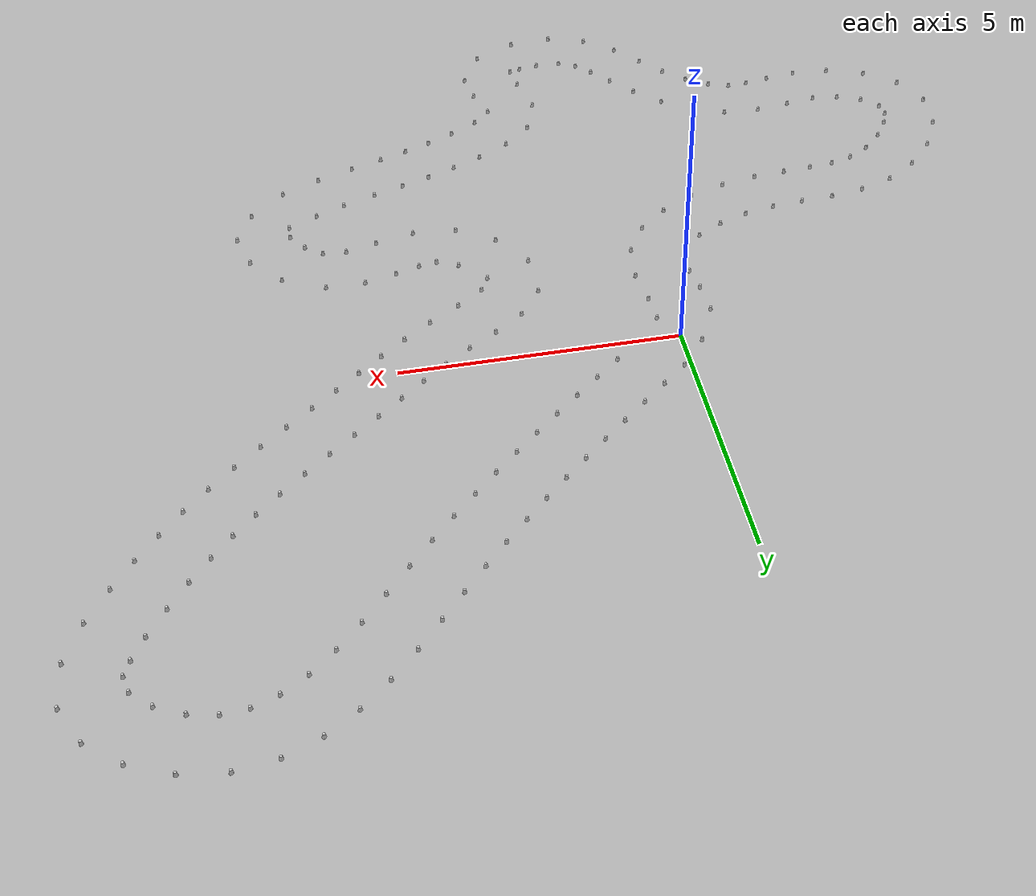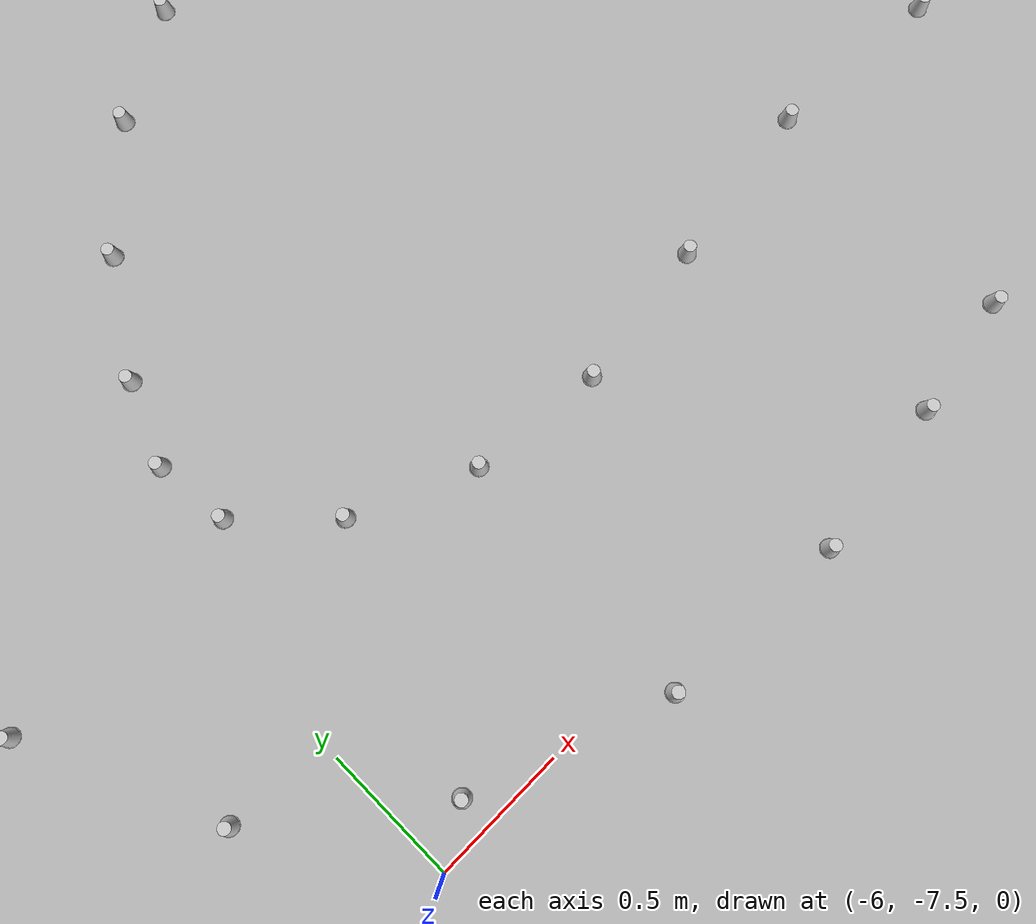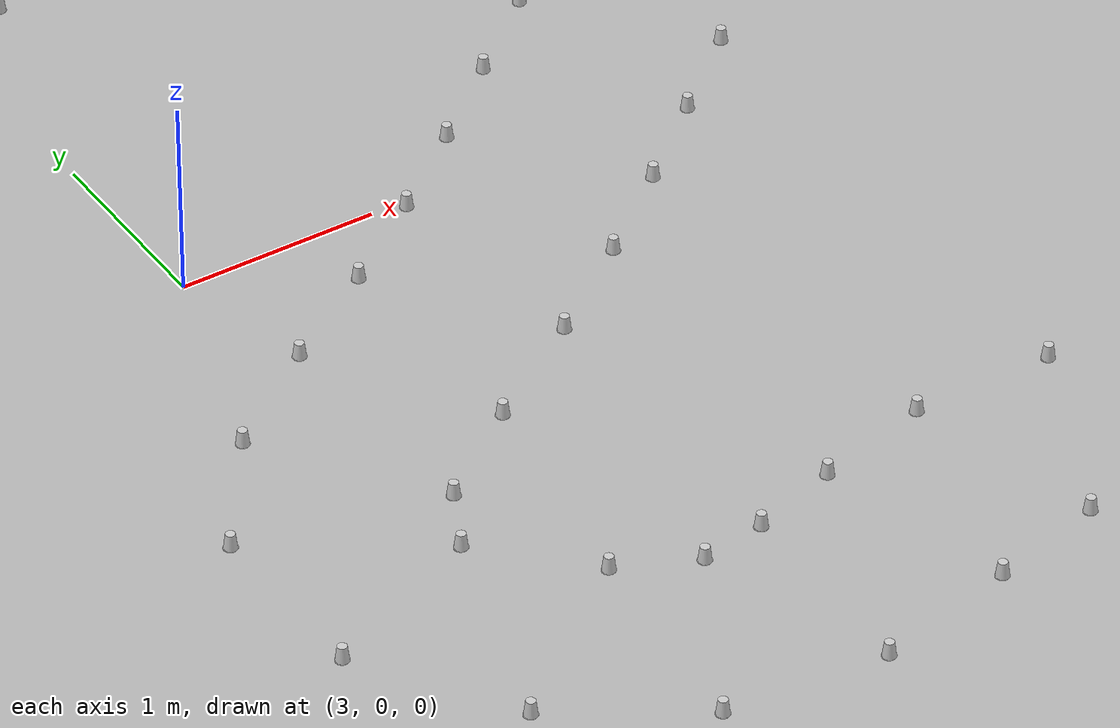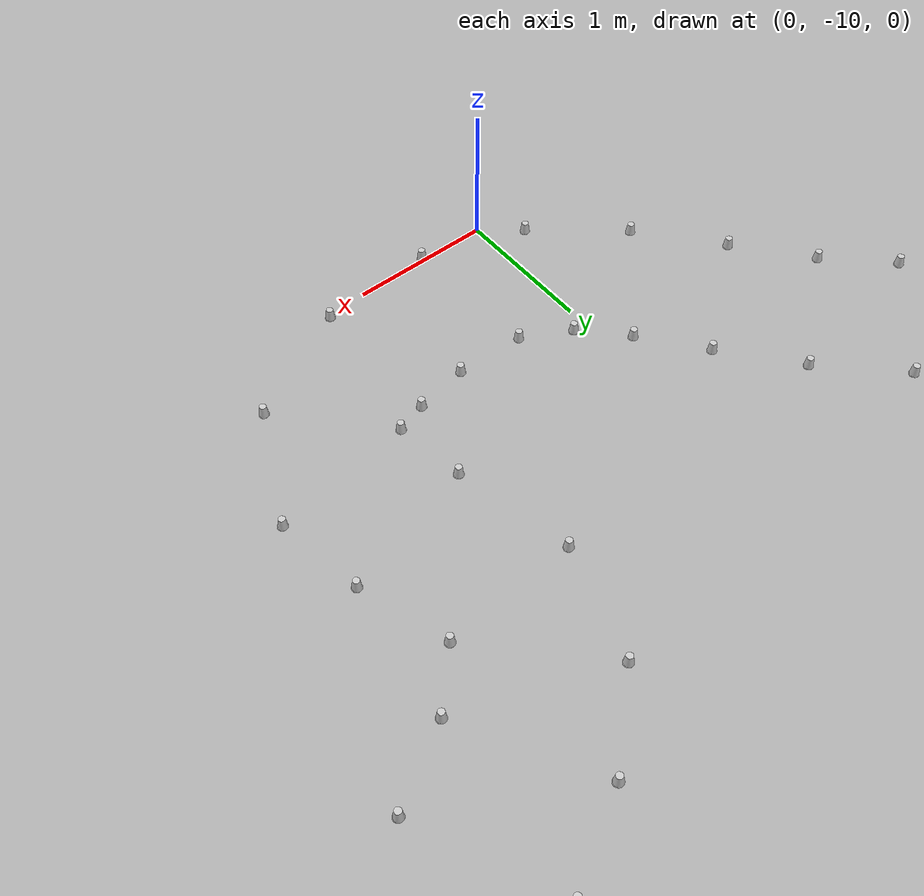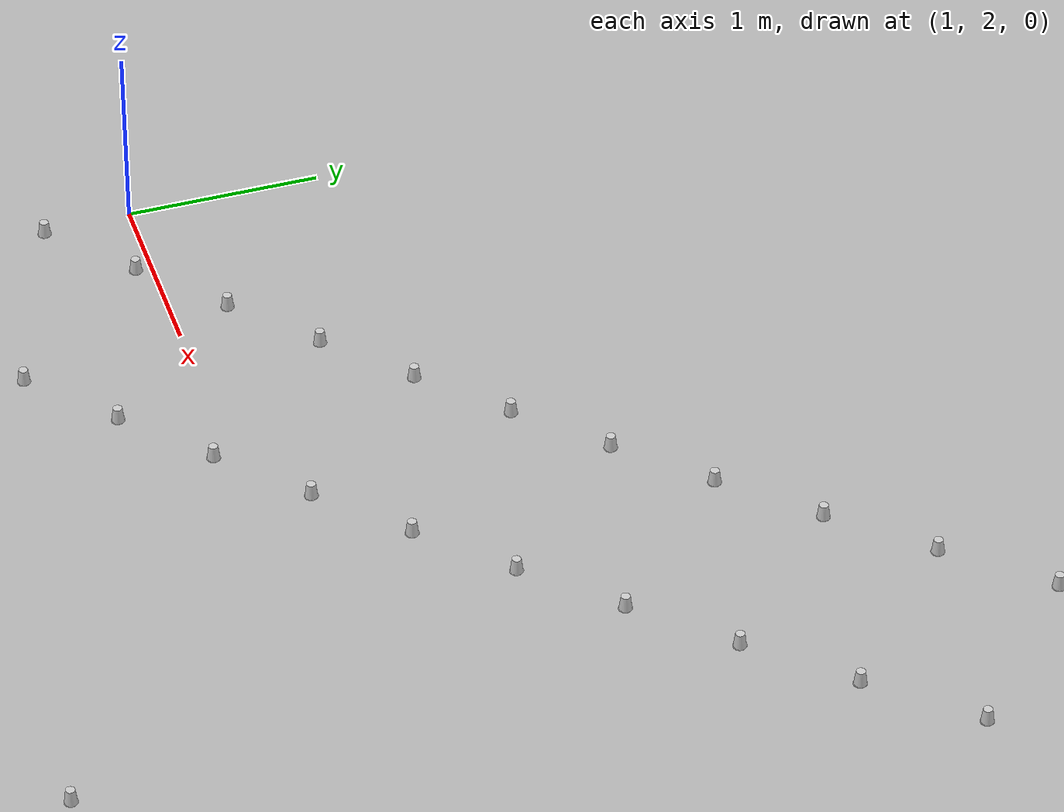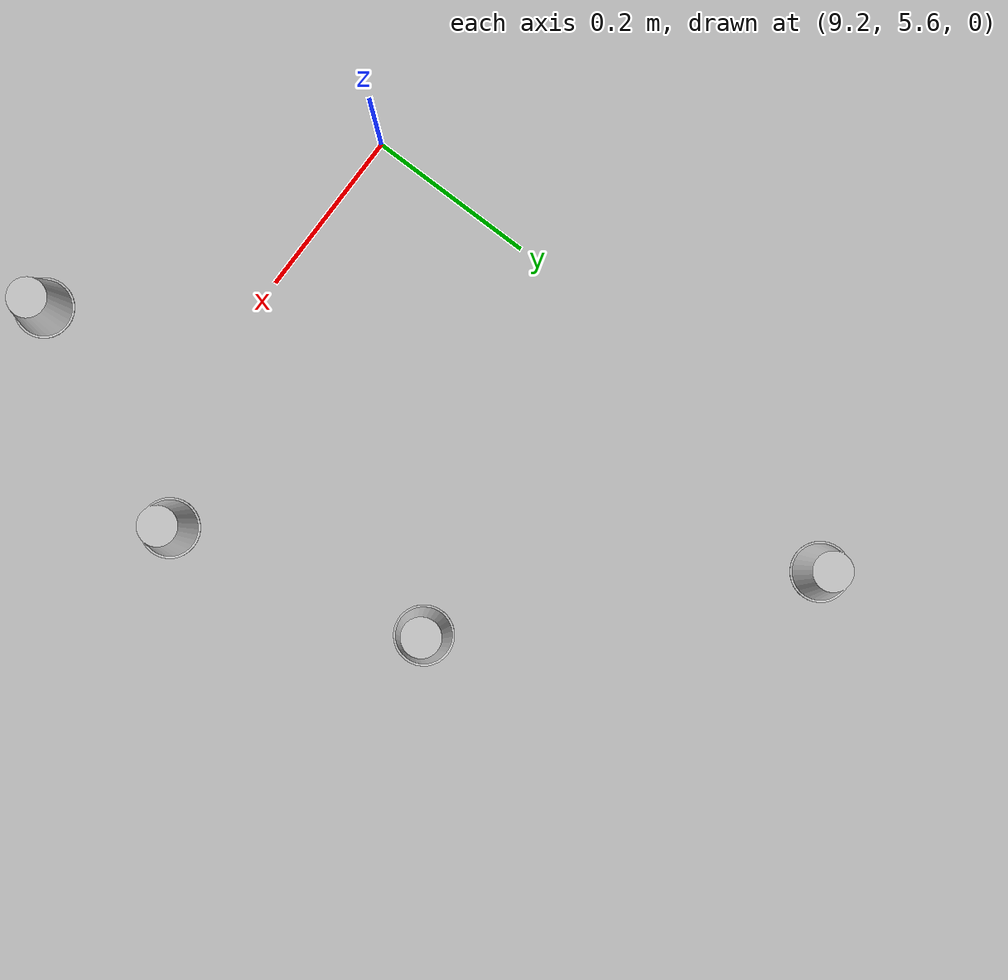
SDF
<?xml version='1.0' encoding='UTF-8'?>
<sdf version="1.4">
  <model name="some track">
    <include>
      <uri>model://cone_yellow</uri>
      <pose>0.7903068028861945 0.021845637287467967 0 0 0 0</pose>
      <name>cone_right_0</name>
    </include>
    <include>
      <uri>model://cone_yellow</uri>
      <pose>1.2393142175344516 0.41014836666673943 0 0 0 0</pose>
      <name>cone_right_1</name>
    </include>
    <include>
      <uri>model://cone_yellow</uri>
      <pose>1.6763016855677961 0.790349593238324 0 0 0 0</pose>
      <name>cone_right_2</name>
    </include>
    <include>
      <uri>model://cone_yellow</uri>
      <pose>2.1032036446618774 1.1658504882365066 0 0 0 0</pose>
      <name>cone_right_3</name>
    </include>
    <include>
      <uri>model://cone_yellow</uri>
      <pose>2.5219173402246353 1.5400322226631515 0 0 0 0</pose>
      <name>cone_right_4</name>
    </include>
    <include>
      <uri>model://cone_yellow</uri>
      <pose>2.934298205927498 1.916251039455393 0 0 0 0</pose>
      <name>cone_right_5</name>
    </include>
    <include>
      <uri>model://cone_yellow</uri>
      <pose>3.3421593083753023 2.2978344098972396 0 0 0 0</pose>
      <name>cone_right_6</name>
    </include>
    <include>
      <uri>model://cone_yellow</uri>
      <pose>3.7472754867399467 2.6880790931509924 0 0 0 0</pose>
      <name>cone_right_7</name>
    </include>
    <include>
      <uri>model://cone_yellow</uri>
      <pose>4.151391955042832 3.0902518188305583 0 0 0 0</pose>
      <name>cone_right_8</name>
    </include>
    <include>
      <uri>model://cone_yellow</uri>
      <pose>4.55623621049145 3.5075929665534473 0 0 0 0</pose>
      <name>cone_right_9</name>
    </include>
    <include>
      <uri>model://cone_yellow</uri>
      <pose>4.963531392867045 3.943323067845106 0 0 0 0</pose>
      <name>cone_right_10</name>
    </include>
    <include>
      <uri>model://cone_yellow</uri>
      <pose>5.375009003325162 4.4006513580652955 0 0 0 0</pose>
      <name>cone_right_11</name>
    </include>
    <include>
      <uri>model://cone_yellow</uri>
      <pose>5.791950422367844 4.880261060611731 0 0 0 0</pose>
      <name>cone_right_12</name>
    </include>
    <include>
      <uri>model://cone_yellow</uri>
      <pose>6.211567297760634 5.356157008735423 0 0 0 0</pose>
      <name>cone_right_13</name>
    </include>
    <include>
      <uri>model://cone_yellow</uri>
      <pose>6.634821010686621 5.794136557599716 0 0 0 0</pose>
      <name>cone_right_14</name>
    </include>
    <include>
      <uri>model://cone_yellow</uri>
      <pose>7.063907017033415 6.164732100872904 0 0 0 0</pose>
      <name>cone_right_15</name>
    </include>
    <include>
      <uri>model://cone_yellow</uri>
      <pose>7.497042533063882 6.439977203475497 0 0 0 0</pose>
      <name>cone_right_16</name>
    </include>
    <include>
      <uri>model://cone_yellow</uri>
      <pose>7.929938955991031 6.598063140316374 0 0 0 0</pose>
      <name>cone_right_17</name>
    </include>
    <include>
      <uri>model://cone_yellow</uri>
      <pose>8.36558845999559 6.628531744224526 0 0 0 0</pose>
      <name>cone_right_18</name>
    </include>
    <include>
      <uri>model://cone_yellow</uri>
      <pose>8.827423779855046 6.525471670814983 0 0 0 0</pose>
      <name>cone_right_19</name>
    </include>
    <include>
      <uri>model://cone_yellow</uri>
      <pose>9.288146140578542 6.295149485439371 0 0 0 0</pose>
      <name>cone_right_20</name>
    </include>
    <include>
      <uri>model://cone_yellow</uri>
      <pose>9.618585660560317 5.978969313016247 0 0 0 0</pose>
      <name>cone_right_21</name>
    </include>
    <include>
      <uri>model://cone_yellow</uri>
      <pose>9.696202968300673 5.674376011767347 0 0 0 0</pose>
      <name>cone_right_22</name>
    </include>
    <include>
      <uri>model://cone_yellow</uri>
      <pose>9.583354017250965 5.406372757519657 0 0 0 0</pose>
      <name>cone_right_23</name>
    </include>
    <include>
      <uri>model://cone_yellow</uri>
      <pose>9.359152386966194 5.001992204541675 0 0 0 0</pose>
      <name>cone_right_24</name>
    </include>
    <include>
      <uri>model://cone_yellow</uri>
      <pose>9.038722156686179 4.5292066678711045 0 0 0 0</pose>
      <name>cone_right_25</name>
    </include>
    <include>
      <uri>model://cone_yellow</uri>
      <pose>8.694596810375735 4.066040747746386 0 0 0 0</pose>
      <name>cone_right_26</name>
    </include>
    <include>
      <uri>model://cone_yellow</uri>
      <pose>8.347499909304366 3.640565776709532 0 0 0 0</pose>
      <name>cone_right_27</name>
    </include>
    <include>
      <uri>model://cone_yellow</uri>
      <pose>7.99011312695322 3.2441949734354756 0 0 0 0</pose>
      <name>cone_right_28</name>
    </include>
    <include>
      <uri>model://cone_yellow</uri>
      <pose>7.6114815983863116 2.863463875998927 0 0 0 0</pose>
      <name>cone_right_29</name>
    </include>
    <include>
      <uri>model://cone_yellow</uri>
      <pose>7.206487154027621 2.488671508979278 0 0 0 0</pose>
      <name>cone_right_30</name>
    </include>
    <include>
      <uri>model://cone_yellow</uri>
      <pose>6.78038456121811 2.1173921707558945 0 0 0 0</pose>
      <name>cone_right_31</name>
    </include>
    <include>
      <uri>model://cone_yellow</uri>
      <pose>6.341096025165415 1.749432633605972 0 0 0 0</pose>
      <name>cone_right_32</name>
    </include>
    <include>
      <uri>model://cone_yellow</uri>
      <pose>5.8966208136135245 1.3843888721379434 0 0 0 0</pose>
      <name>cone_right_33</name>
    </include>
    <include>
      <uri>model://cone_yellow</uri>
      <pose>5.454861865014956 1.0215609466394702 0 0 0 0</pose>
      <name>cone_right_34</name>
    </include>
    <include>
      <uri>model://cone_yellow</uri>
      <pose>5.022863065915921 0.6604521462381756 0 0 0 0</pose>
      <name>cone_right_35</name>
    </include>
    <include>
      <uri>model://cone_yellow</uri>
      <pose>4.598035037080028 0.30631397906991376 0 0 0 0</pose>
      <name>cone_right_36</name>
    </include>
    <include>
      <uri>model://cone_yellow</uri>
      <pose>4.164392718214367 -0.03752888189072123 0 0 0 0</pose>
      <name>cone_right_37</name>
    </include>
    <include>
      <uri>model://cone_yellow</uri>
      <pose>3.69994235231943 -0.37333894221495745 0 0 0 0</pose>
      <name>cone_right_38</name>
    </include>
    <include>
      <uri>model://cone_yellow</uri>
      <pose>3.183885718914305 -0.7069644815298772 0 0 0 0</pose>
      <name>cone_right_39</name>
    </include>
    <include>
      <uri>model://cone_yellow</uri>
      <pose>2.653612750068761 -1.096465154755807 0 0 0 0</pose>
      <name>cone_right_40</name>
    </include>
    <include>
      <uri>model://cone_yellow</uri>
      <pose>2.245492559671656 -1.675796326845552 0 0 0 0</pose>
      <name>cone_right_41</name>
    </include>
    <include>
      <uri>model://cone_yellow</uri>
      <pose>2.267425148436005 -2.5673306793850386 0 0 0 0</pose>
      <name>cone_right_42</name>
    </include>
    <include>
      <uri>model://cone_yellow</uri>
      <pose>2.755124972575575 -3.2947017897885527 0 0 0 0</pose>
      <name>cone_right_43</name>
    </include>
    <include>
      <uri>model://cone_yellow</uri>
      <pose>3.443046695931271 -3.726543353017429 0 0 0 0</pose>
      <name>cone_right_44</name>
    </include>
    <include>
      <uri>model://cone_yellow</uri>
      <pose>4.247131494876844 -3.799701138414675 0 0 0 0</pose>
      <name>cone_right_45</name>
    </include>
    <include>
      <uri>model://cone_yellow</uri>
      <pose>4.958949574950246 -3.6318605045346435 0 0 0 0</pose>
      <name>cone_right_46</name>
    </include>
    <include>
      <uri>model://cone_yellow</uri>
      <pose>5.5338731596338615 -3.4847873599469983 0 0 0 0</pose>
      <name>cone_right_47</name>
    </include>
    <include>
      <uri>model://cone_yellow</uri>
      <pose>5.964303062751814 -3.520170807462865 0 0 0 0</pose>
      <name>cone_right_48</name>
    </include>
    <include>
      <uri>model://cone_yellow</uri>
      <pose>6.274140390867912 -3.760500875887212 0 0 0 0</pose>
      <name>cone_right_49</name>
    </include>
    <include>
      <uri>model://cone_yellow</uri>
      <pose>6.517208005599094 -4.124235182253893 0 0 0 0</pose>
      <name>cone_right_50</name>
    </include>
    <include>
      <uri>model://cone_yellow</uri>
      <pose>6.5124685102356645 -4.41125231861134 0 0 0 0</pose>
      <name>cone_right_51</name>
    </include>
    <include>
      <uri>model://cone_yellow</uri>
      <pose>5.975671464338728 -4.678632288844485 0 0 0 0</pose>
      <name>cone_right_52</name>
    </include>
    <include>
      <uri>model://cone_yellow</uri>
      <pose>5.431032569261925 -4.913716970946239 0 0 0 0</pose>
      <name>cone_right_53</name>
    </include>
    <include>
      <uri>model://cone_yellow</uri>
      <pose>4.819510633957185 -5.130330048542375 0 0 0 0</pose>
      <name>cone_right_54</name>
    </include>
    <include>
      <uri>model://cone_yellow</uri>
      <pose>4.245659117031338 -5.324700737613043 0 0 0 0</pose>
      <name>cone_right_55</name>
    </include>
    <include>
      <uri>model://cone_yellow</uri>
      <pose>3.712638775819019 -5.514268204251535 0 0 0 0</pose>
      <name>cone_right_56</name>
    </include>
    <include>
      <uri>model://cone_yellow</uri>
      <pose>3.1853352246381905 -5.725284460348147 0 0 0 0</pose>
      <name>cone_right_57</name>
    </include>
    <include>
      <uri>model://cone_yellow</uri>
      <pose>2.6294619879497536 -5.984217908112782 0 0 0 0</pose>
      <name>cone_right_58</name>
    </include>
    <include>
      <uri>model://cone_yellow</uri>
      <pose>2.0385527056730792 -6.320874155221388 0 0 0 0</pose>
      <name>cone_right_59</name>
    </include>
    <include>
      <uri>model://cone_yellow</uri>
      <pose>1.516438068830003 -6.803613543591254 0 0 0 0</pose>
      <name>cone_right_60</name>
    </include>
    <include>
      <uri>model://cone_yellow</uri>
      <pose>1.2696440993872349 -7.584062375294875 0 0 0 0</pose>
      <name>cone_right_61</name>
    </include>
    <include>
      <uri>model://cone_yellow</uri>
      <pose>1.440828918849158 -8.406504001395536 0 0 0 0</pose>
      <name>cone_right_62</name>
    </include>
    <include>
      <uri>model://cone_yellow</uri>
      <pose>1.5072645714534936 -8.903341293575112 0 0 0 0</pose>
      <name>cone_right_63</name>
    </include>
    <include>
      <uri>model://cone_yellow</uri>
      <pose>1.2918785896015625 -8.969830360301904 0 0 0 0</pose>
      <name>cone_right_64</name>
    </include>
    <include>
      <uri>model://cone_yellow</uri>
      <pose>0.917859451704611 -9.038833853958828 0 0 0 0</pose>
      <name>cone_right_65</name>
    </include>
    <include>
      <uri>model://cone_yellow</uri>
      <pose>0.43541461445817964 -9.026507570217534 0 0 0 0</pose>
      <name>cone_right_66</name>
    </include>
    <include>
      <uri>model://cone_yellow</uri>
      <pose>0.10486505318580791 -8.85223344857643 0 0 0 0</pose>
      <name>cone_right_67</name>
    </include>
    <include>
      <uri>model://cone_yellow</uri>
      <pose>-0.16682370499794502 -8.565292616028826 0 0 0 0</pose>
      <name>cone_right_68</name>
    </include>
    <include>
      <uri>model://cone_yellow</uri>
      <pose>-0.4884970748785588 -8.152291736035034 0 0 0 0</pose>
      <name>cone_right_69</name>
    </include>
    <include>
      <uri>model://cone_yellow</uri>
      <pose>-0.8858069242208952 -7.664178339694872 0 0 0 0</pose>
      <name>cone_right_70</name>
    </include>
    <include>
      <uri>model://cone_yellow</uri>
      <pose>-1.370313849947691 -7.18980518667086 0 0 0 0</pose>
      <name>cone_right_71</name>
    </include>
    <include>
      <uri>model://cone_yellow</uri>
      <pose>-1.9242894870972567 -6.804077834394224 0 0 0 0</pose>
      <name>cone_right_72</name>
    </include>
    <include>
      <uri>model://cone_yellow</uri>
      <pose>-2.5545239511223055 -6.559865905474404 0 0 0 0</pose>
      <name>cone_right_73</name>
    </include>
    <include>
      <uri>model://cone_yellow</uri>
      <pose>-3.2536101831016193 -6.517594083888916 0 0 0 0</pose>
      <name>cone_right_74</name>
    </include>
    <include>
      <uri>model://cone_yellow</uri>
      <pose>-3.907958668420437 -6.615285112359366 0 0 0 0</pose>
      <name>cone_right_75</name>
    </include>
    <include>
      <uri>model://cone_yellow</uri>
      <pose>-4.48175379768516 -6.692147767323972 0 0 0 0</pose>
      <name>cone_right_76</name>
    </include>
    <include>
      <uri>model://cone_yellow</uri>
      <pose>-4.990109666759727 -6.640624832868604 0 0 0 0</pose>
      <name>cone_right_77</name>
    </include>
    <include>
      <uri>model://cone_yellow</uri>
      <pose>-5.437808812101916 -6.444510229546942 0 0 0 0</pose>
      <name>cone_right_78</name>
    </include>
    <include>
      <uri>model://cone_yellow</uri>
      <pose>-5.734965031445247 -6.150928328220027 0 0 0 0</pose>
      <name>cone_right_79</name>
    </include>
    <include>
      <uri>model://cone_yellow</uri>
      <pose>-5.765130568764182 -5.864434444837292 0 0 0 0</pose>
      <name>cone_right_80</name>
    </include>
    <include>
      <uri>model://cone_yellow</uri>
      <pose>-5.636826331853042 -5.561190690854722 0 0 0 0</pose>
      <name>cone_right_81</name>
    </include>
    <include>
      <uri>model://cone_yellow</uri>
      <pose>-5.375447125225274 -5.1600044761824755 0 0 0 0</pose>
      <name>cone_right_82</name>
    </include>
    <include>
      <uri>model://cone_yellow</uri>
      <pose>-4.997415627017048 -4.783714653701788 0 0 0 0</pose>
      <name>cone_right_83</name>
    </include>
    <include>
      <uri>model://cone_yellow</uri>
      <pose>-4.586449513634424 -4.540549264499129 0 0 0 0</pose>
      <name>cone_right_84</name>
    </include>
    <include>
      <uri>model://cone_yellow</uri>
      <pose>-4.170008489982322 -4.421524354460152 0 0 0 0</pose>
      <name>cone_right_85</name>
    </include>
    <include>
      <uri>model://cone_yellow</uri>
      <pose>-3.700688769628779 -4.362873247121042 0 0 0 0</pose>
      <name>cone_right_86</name>
    </include>
    <include>
      <uri>model://cone_yellow</uri>
      <pose>-3.157452632057519 -4.327138287686611 0 0 0 0</pose>
      <name>cone_right_87</name>
    </include>
    <include>
      <uri>model://cone_yellow</uri>
      <pose>-2.540506699960826 -4.270180051481141 0 0 0 0</pose>
      <name>cone_right_88</name>
    </include>
    <include>
      <uri>model://cone_yellow</uri>
      <pose>-1.8593755272253094 -4.136870917593568 0 0 0 0</pose>
      <name>cone_right_89</name>
    </include>
    <include>
      <uri>model://cone_yellow</uri>
      <pose>-1.1713619968457316 -3.901237245424263 0 0 0 0</pose>
      <name>cone_right_90</name>
    </include>
    <include>
      <uri>model://cone_yellow</uri>
      <pose>-0.5404674146434422 -3.5616619374472136 0 0 0 0</pose>
      <name>cone_right_91</name>
    </include>
    <include>
      <uri>model://cone_yellow</uri>
      <pose>-0.015478964129059691 -3.104167939558691 0 0 0 0</pose>
      <name>cone_right_92</name>
    </include>
    <include>
      <uri>model://cone_yellow</uri>
      <pose>0.33906094090178807 -2.495975149683355 0 0 0 0</pose>
      <name>cone_right_93</name>
    </include>
    <include>
      <uri>model://cone_yellow</uri>
      <pose>0.4261163203386632 -1.74723478407271 0 0 0 0</pose>
      <name>cone_right_94</name>
    </include>
    <include>
      <uri>model://cone_yellow</uri>
      <pose>0.34218106621249855 -1.0665513935467335 0 0 0 0</pose>
      <name>cone_right_95</name>
    </include>
    <include>
      <uri>model://cone_yellow</uri>
      <pose>0.3168279000328681 -0.5228219522142816 0 0 0 0</pose>
      <name>cone_right_96</name>
    </include>
    <include>
      <uri>model://cone_blue</uri>
      <pose>0.13672023707351344 0.7786974067834413 0 0 0 0</pose>
      <name>cone_left_0</name>
    </include>
    <include>
      <uri>model://cone_blue</uri>
      <pose>0.5851891151458314 1.166534743080988 0 0 0 0</pose>
      <name>cone_left_1</name>
    </include>
    <include>
      <uri>model://cone_blue</uri>
      <pose>1.0199115345040262 1.5447712058572105 0 0 0 0</pose>
      <name>cone_left_2</name>
    </include>
    <include>
      <uri>model://cone_blue</uri>
      <pose>1.4427373993825436 1.9167062259429044 0 0 0 0</pose>
      <name>cone_left_3</name>
    </include>
    <include>
      <uri>model://cone_blue</uri>
      <pose>1.8555538062835433 2.2856592344012854 0 0 0 0</pose>
      <name>cone_left_4</name>
    </include>
    <include>
      <uri>model://cone_blue</uri>
      <pose>2.260289663445691 2.6549745903602973 0 0 0 0</pose>
      <name>cone_left_5</name>
    </include>
    <include>
      <uri>model://cone_blue</uri>
      <pose>2.658916246174249 3.0280254246010143 0 0 0 0</pose>
      <name>cone_left_6</name>
    </include>
    <include>
      <uri>model://cone_blue</uri>
      <pose>3.0534430572074167 3.4082155800262144 0 0 0 0</pose>
      <name>cone_left_7</name>
    </include>
    <include>
      <uri>model://cone_blue</uri>
      <pose>3.445909224433886 3.7989789290870695 0 0 0 0</pose>
      <name>cone_left_8</name>
    </include>
    <include>
      <uri>model://cone_blue</uri>
      <pose>3.838371592556266 4.203775694231154 0 0 0 0</pose>
      <name>cone_left_9</name>
    </include>
    <include>
      <uri>model://cone_blue</uri>
      <pose>4.232891363703402 4.626085945998093 0 0 0 0</pose>
      <name>cone_left_10</name>
    </include>
    <include>
      <uri>model://cone_blue</uri>
      <pose>4.631521378629853 5.06940105109321 0 0 0 0</pose>
      <name>cone_left_11</name>
    </include>
    <include>
      <uri>model://cone_blue</uri>
      <pose>5.037183989013073 5.5362546818314184 0 0 0 0</pose>
      <name>cone_left_12</name>
    </include>
    <include>
      <uri>model://cone_blue</uri>
      <pose>5.461488502847709 6.017505480739384 0 0 0 0</pose>
      <name>cone_left_13</name>
    </include>
    <include>
      <uri>model://cone_blue</uri>
      <pose>5.9151551640256 6.488457138563348 0 0 0 0</pose>
      <name>cone_left_14</name>
    </include>
    <include>
      <uri>model://cone_blue</uri>
      <pose>6.407712780364157 6.919324125586954 0 0 0 0</pose>
      <name>cone_left_15</name>
    </include>
    <include>
      <uri>model://cone_blue</uri>
      <pose>6.952668399305554 7.278819740841641 0 0 0 0</pose>
      <name>cone_left_16</name>
    </include>
    <include>
      <uri>model://cone_blue</uri>
      <pose>7.5660348873418295 7.52949957337048 0 0 0 0</pose>
      <name>cone_left_17</name>
    </include>
    <include>
      <uri>model://cone_blue</uri>
      <pose>8.25654433399727 7.622568654296412 0 0 0 0</pose>
      <name>cone_left_18</name>
    </include>
    <include>
      <uri>model://cone_blue</uri>
      <pose>9.003155166686398 7.509909825135675 0 0 0 0</pose>
      <name>cone_left_19</name>
    </include>
    <include>
      <uri>model://cone_blue</uri>
      <pose>9.706906219176824 7.203246394679988 0 0 0 0</pose>
      <name>cone_left_20</name>
    </include>
    <include>
      <uri>model://cone_blue</uri>
      <pose>10.27701213469609 6.73161436757858 0 0 0 0</pose>
      <name>cone_left_21</name>
    </include>
    <include>
      <uri>model://cone_blue</uri>
      <pose>10.614957772755782 6.0692045939275765 0 0 0 0</pose>
      <name>cone_left_22</name>
    </include>
    <include>
      <uri>model://cone_blue</uri>
      <pose>10.573131817029626 5.263754711447959 0 0 0 0</pose>
      <name>cone_left_23</name>
    </include>
    <include>
      <uri>model://cone_blue</uri>
      <pose>10.257728576637831 4.563174666884843 0 0 0 0</pose>
      <name>cone_left_24</name>
    </include>
    <include>
      <uri>model://cone_blue</uri>
      <pose>9.870862709602894 3.9746418833855937 0 0 0 0</pose>
      <name>cone_left_25</name>
    </include>
    <include>
      <uri>model://cone_blue</uri>
      <pose>9.497938717225626 3.470522670188045 0 0 0 0</pose>
      <name>cone_left_26</name>
    </include>
    <include>
      <uri>model://cone_blue</uri>
      <pose>9.12295979587448 3.009168940860108 0 0 0 0</pose>
      <name>cone_left_27</name>
    </include>
    <include>
      <uri>model://cone_blue</uri>
      <pose>8.733558308474157 2.5753980968927523 0 0 0 0</pose>
      <name>cone_left_28</name>
    </include>
    <include>
      <uri>model://cone_blue</uri>
      <pose>8.321326166152295 2.1591055228766516 0 0 0 0</pose>
      <name>cone_left_29</name>
    </include>
    <include>
      <uri>model://cone_blue</uri>
      <pose>7.886278274939122 1.7552657332112624 0 0 0 0</pose>
      <name>cone_left_30</name>
    </include>
    <include>
      <uri>model://cone_blue</uri>
      <pose>7.43763048212492 1.3637159807038544 0 0 0 0</pose>
      <name>cone_left_31</name>
    </include>
    <include>
      <uri>model://cone_blue</uri>
      <pose>6.983350586948102 0.9829412260420456 0 0 0 0</pose>
      <name>cone_left_32</name>
    </include>
    <include>
      <uri>model://cone_blue</uri>
      <pose>6.53132932611073 0.611637227582214 0 0 0 0</pose>
      <name>cone_left_33</name>
    </include>
    <include>
      <uri>model://cone_blue</uri>
      <pose>6.0895537656063246 0.24879565800150621 0 0 0 0</pose>
      <name>cone_left_34</name>
    </include>
    <include>
      <uri>model://cone_blue</uri>
      <pose>5.664235624440337 -0.1067774420675966 0 0 0 0</pose>
      <name>cone_left_35</name>
    </include>
    <include>
      <uri>model://cone_blue</uri>
      <pose>5.238342605571913 -0.4618046431050802 0 0 0 0</pose>
      <name>cone_left_36</name>
    </include>
    <include>
      <uri>model://cone_blue</uri>
      <pose>4.785905996288559 -0.8209325104101918 0 0 0 0</pose>
      <name>cone_left_37</name>
    </include>
    <include>
      <uri>model://cone_blue</uri>
      <pose>4.286539815012336 -1.1832175854463025 0 0 0 0</pose>
      <name>cone_left_38</name>
    </include>
    <include>
      <uri>model://cone_blue</uri>
      <pose>3.7277184358765396 -1.5461581278127088 0 0 0 0</pose>
      <name>cone_left_39</name>
    </include>
    <include>
      <uri>model://cone_blue</uri>
      <pose>3.246700228321195 -1.901603182140037 0 0 0 0</pose>
      <name>cone_left_40</name>
    </include>
    <include>
      <uri>model://cone_blue</uri>
      <pose>3.089562580308768 -2.21202929884715 0 0 0 0</pose>
      <name>cone_left_41</name>
    </include>
    <include>
      <uri>model://cone_blue</uri>
      <pose>3.546968808858942 -2.683978170677551 0 0 0 0</pose>
      <name>cone_left_42</name>
    </include>
    <include>
      <uri>model://cone_blue</uri>
      <pose>3.9324189851261164 -2.8544683777038404 0 0 0 0</pose>
      <name>cone_left_43</name>
    </include>
    <include>
      <uri>model://cone_blue</uri>
      <pose>4.263448099393641 -2.7998342630672406 0 0 0 0</pose>
      <name>cone_left_44</name>
    </include>
    <include>
      <uri>model://cone_blue</uri>
      <pose>4.704837873707444 -2.664685627228844 0 0 0 0</pose>
      <name>cone_left_45</name>
    </include>
    <include>
      <uri>model://cone_blue</uri>
      <pose>5.286023353253565 -2.5159888909777033 0 0 0 0</pose>
      <name>cone_left_46</name>
    </include>
    <include>
      <uri>model://cone_blue</uri>
      <pose>5.999410992876305 -2.520787280861404 0 0 0 0</pose>
      <name>cone_left_47</name>
    </include>
    <include>
      <uri>model://cone_blue</uri>
      <pose>6.7667819292658224 -2.890268542171129 0 0 0 0</pose>
      <name>cone_left_48</name>
    </include>
    <include>
      <uri>model://cone_blue</uri>
      <pose>7.2996583425734345 -3.50152219044407 0 0 0 0</pose>
      <name>cone_left_49</name>
    </include>
    <include>
      <uri>model://cone_blue</uri>
      <pose>7.495145460639242 -4.225925550049632 0 0 0 0</pose>
      <name>cone_left_50</name>
    </include>
    <include>
      <uri>model://cone_blue</uri>
      <pose>6.5497689746312915 -5.49741922613396 0 0 0 0</pose>
      <name>cone_left_51</name>
    </include>
    <include>
      <uri>model://cone_blue</uri>
      <pose>5.841063820939382 -5.825788444377909 0 0 0 0</pose>
      <name>cone_left_52</name>
    </include>
    <include>
      <uri>model://cone_blue</uri>
      <pose>5.155702507351162 -6.072123563206735 0 0 0 0</pose>
      <name>cone_left_53</name>
    </include>
    <include>
      <uri>model://cone_blue</uri>
      <pose>4.566570849146982 -6.271809844416762 0 0 0 0</pose>
      <name>cone_left_54</name>
    </include>
    <include>
      <uri>model://cone_blue</uri>
      <pose>4.0478205376271355 -6.456421687794003 0 0 0 0</pose>
      <name>cone_left_55</name>
    </include>
    <include>
      <uri>model://cone_blue</uri>
      <pose>3.5575089618449014 -6.653447543719594 0 0 0 0</pose>
      <name>cone_left_56</name>
    </include>
    <include>
      <uri>model://cone_blue</uri>
      <pose>3.0528645315675633 -6.890159565206643 0 0 0 0</pose>
      <name>cone_left_57</name>
    </include>
    <include>
      <uri>model://cone_blue</uri>
      <pose>2.5357843909889466 -7.188491957665496 0 0 0 0</pose>
      <name>cone_left_58</name>
    </include>
    <include>
      <uri>model://cone_blue</uri>
      <pose>2.2108559255927096 -7.523185527626964 0 0 0 0</pose>
      <name>cone_left_59</name>
    </include>
    <include>
      <uri>model://cone_blue</uri>
      <pose>2.4049354962810834 -8.140988451281238 0 0 0 0</pose>
      <name>cone_left_60</name>
    </include>
    <include>
      <uri>model://cone_blue</uri>
      <pose>2.4973335820162683 -8.762759095828569 0 0 0 0</pose>
      <name>cone_left_61</name>
    </include>
    <include>
      <uri>model://cone_blue</uri>
      <pose>2.1071732709412174 -9.548876630110518 0 0 0 0</pose>
      <name>cone_left_62</name>
    </include>
    <include>
      <uri>model://cone_blue</uri>
      <pose>1.2963970131815934 -9.964419784357005 0 0 0 0</pose>
      <name>cone_left_63</name>
    </include>
    <include>
      <uri>model://cone_blue</uri>
      <pose>0.4729538821242292 -10.025802723504638 0 0 0 0</pose>
      <name>cone_left_64</name>
    </include>
    <include>
      <uri>model://cone_blue</uri>
      <pose>-0.2600121419695106 -9.783289103441158 0 0 0 0</pose>
      <name>cone_left_65</name>
    </include>
    <include>
      <uri>model://cone_blue</uri>
      <pose>-0.8352666839521676 -9.309056008437194 0 0 0 0</pose>
      <name>cone_left_66</name>
    </include>
    <include>
      <uri>model://cone_blue</uri>
      <pose>-1.2694801498387072 -8.776843924907821 0 0 0 0</pose>
      <name>cone_left_67</name>
    </include>
    <include>
      <uri>model://cone_blue</uri>
      <pose>-1.6613436474763674 -8.295480795639854 0 0 0 0</pose>
      <name>cone_left_68</name>
    </include>
    <include>
      <uri>model://cone_blue</uri>
      <pose>-2.0662448285785215 -7.907913864366607 0 0 0 0</pose>
      <name>cone_left_69</name>
    </include>
    <include>
      <uri>model://cone_blue</uri>
      <pose>-2.486653049797251 -7.630967925849776 0 0 0 0</pose>
      <name>cone_left_70</name>
    </include>
    <include>
      <uri>model://cone_blue</uri>
      <pose>-2.894182089762779 -7.500414866908783 0 0 0 0</pose>
      <name>cone_left_71</name>
    </include>
    <include>
      <uri>model://cone_blue</uri>
      <pose>-3.2770496103493416 -7.5173193427727245 0 0 0 0</pose>
      <name>cone_left_72</name>
    </include>
    <include>
      <uri>model://cone_blue</uri>
      <pose>-3.747631381729536 -7.6023490217098875 0 0 0 0</pose>
      <name>cone_left_73</name>
    </include>
    <include>
      <uri>model://cone_blue</uri>
      <pose>-4.34866039369958 -7.683251266367099 0 0 0 0</pose>
      <name>cone_left_74</name>
    </include>
    <include>
      <uri>model://cone_blue</uri>
      <pose>-5.069024848314731 -7.6375061668899304 0 0 0 0</pose>
      <name>cone_left_75</name>
    </include>
    <include>
      <uri>model://cone_blue</uri>
      <pose>-5.799315660980601 -7.376879683258186 0 0 0 0</pose>
      <name>cone_left_76</name>
    </include>
    <include>
      <uri>model://cone_blue</uri>
      <pose>-6.387192122711159 -6.908951956755977 0 0 0 0</pose>
      <name>cone_left_77</name>
    </include>
    <include>
      <uri>model://cone_blue</uri>
      <pose>-6.708478614253131 -6.196239304765804 0 0 0 0</pose>
      <name>cone_left_78</name>
    </include>
    <include>
      <uri>model://cone_blue</uri>
      <pose>-6.618639731068944 -5.371342200947331 0 0 0 0</pose>
      <name>cone_left_79</name>
    </include>
    <include>
      <uri>model://cone_blue</uri>
      <pose>-6.242743466565332 -4.662212294345366 0 0 0 0</pose>
      <name>cone_left_80</name>
    </include>
    <include>
      <uri>model://cone_blue</uri>
      <pose>-5.721648442739305 -4.094159123935684 0 0 0 0</pose>
      <name>cone_left_81</name>
    </include>
    <include>
      <uri>model://cone_blue</uri>
      <pose>-5.122230449285103 -3.6961922375293277 0 0 0 0</pose>
      <name>cone_left_82</name>
    </include>
    <include>
      <uri>model://cone_blue</uri>
      <pose>-4.479390355530104 -3.4705864693855406 0 0 0 0</pose>
      <name>cone_left_83</name>
    </include>
    <include>
      <uri>model://cone_blue</uri>
      <pose>-3.8405572935208108 -3.372703162729344 0 0 0 0</pose>
      <name>cone_left_84</name>
    </include>
    <include>
      <uri>model://cone_blue</uri>
      <pose>-3.2254828423286876 -3.3294550260797724 0 0 0 0</pose>
      <name>cone_left_85</name>
    </include>
    <include>
      <uri>model://cone_blue</uri>
      <pose>-2.6326742378166426 -3.2744365378363884 0 0 0 0</pose>
      <name>cone_left_86</name>
    </include>
    <include>
      <uri>model://cone_blue</uri>
      <pose>-2.0553363179310304 -3.1562591858128455 0 0 0 0</pose>
      <name>cone_left_87</name>
    </include>
    <include>
      <uri>model://cone_blue</uri>
      <pose>-1.5016723773927712 -2.957364874548375 0 0 0 0</pose>
      <name>cone_left_88</name>
    </include>
    <include>
      <uri>model://cone_blue</uri>
      <pose>-1.0229281769787006 -2.6857443541056747 0 0 0 0</pose>
      <name>cone_left_89</name>
    </include>
    <include>
      <uri>model://cone_blue</uri>
      <pose>-0.6869275957900604 -2.3631168380545033 0 0 0 0</pose>
      <name>cone_left_90</name>
    </include>
    <include>
      <uri>model://cone_blue</uri>
      <pose>-0.545739282643085 -2.030004587936218 0 0 0 0</pose>
      <name>cone_left_91</name>
    </include>
    <include>
      <uri>model://cone_blue</uri>
      <pose>-0.5723408343158563 -1.6917072204740697 0 0 0 0</pose>
      <name>cone_left_92</name>
    </include>
    <include>
      <uri>model://cone_blue</uri>
      <pose>-0.6485810911602554 -1.2021624090214598 0 0 0 0</pose>
      <name>cone_left_93</name>
    </include>
    <include>
      <uri>model://cone_blue</uri>
      <pose>-0.6819227440386816 -0.5727934537593098 0 0 0 0</pose>
      <name>cone_left_94</name>
    </include>
    <include>
      <uri>model://cone_blue</uri>
      <pose>-0.32425861030140624 0.1980103700179754 0 0 0 0</pose>
      <name>cone_left_95</name>
    </include>
    <include>
      <uri>model://cone_blue</uri>
      <pose>7.1857509940764075 -4.916333088160471 0 0 0 0</pose>
      <name>cone_left_96</name>
    </include>
  </model>
</sdf>

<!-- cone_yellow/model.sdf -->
<sdf version='1.4'>
  <model name="cone_yellow">
    <link name="link">
    <collision name="collision"><geometry><box><size> 0.05 0.05 0.01</size>
             </box></geometry></collision>
      <visual name="visual">
        <geometry>
          <mesh>
            <uri>model://cup.dae</uri>
            <scale>1 1 1</scale>
          </mesh>
        </geometry>
        <material>
            <script>
              <uri>model://cone_yellow/materials/scripts</uri>
              <uri>model://cone_yellow/materials/textures</uri>
              <name>cone_yellow/Image</name>
            </script>
        </material>
      </visual>
    </link>
  </model>
</sdf>

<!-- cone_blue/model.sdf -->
<sdf version='1.4'>
  <model name="cone_blue">
    <link name="link">
    <collision name="collision"><geometry><box><size> 0.05 0.05 0.01</size>
             </box></geometry></collision>
      <visual name="visual">
        <geometry>
          <mesh>
            <uri>model://cup.dae</uri>
            <scale>1 1 1</scale>
          </mesh>
        </geometry>
        <material>
            <script>
              <uri>model://cone_blue/materials/scripts</uri>
              <uri>model://cone_blue/materials/textures</uri>
              <name>cone_blue/Image</name>
            </script>
        </material>
      </visual>
    </link>
  </model>
</sdf>
